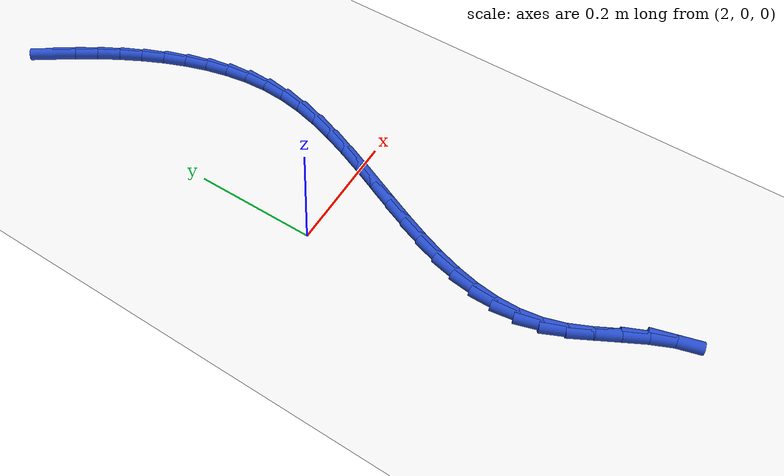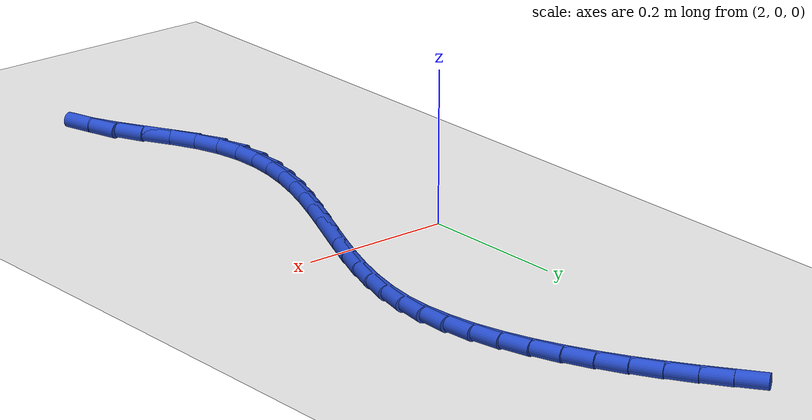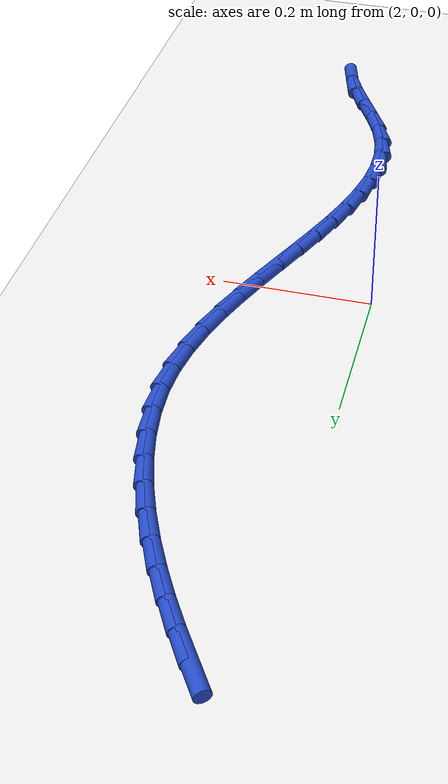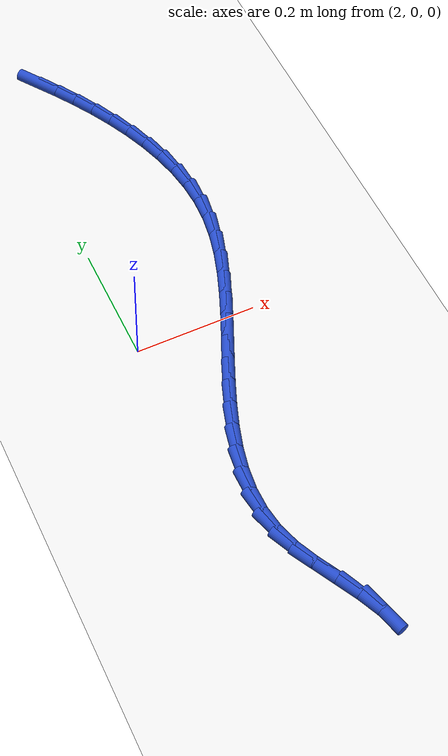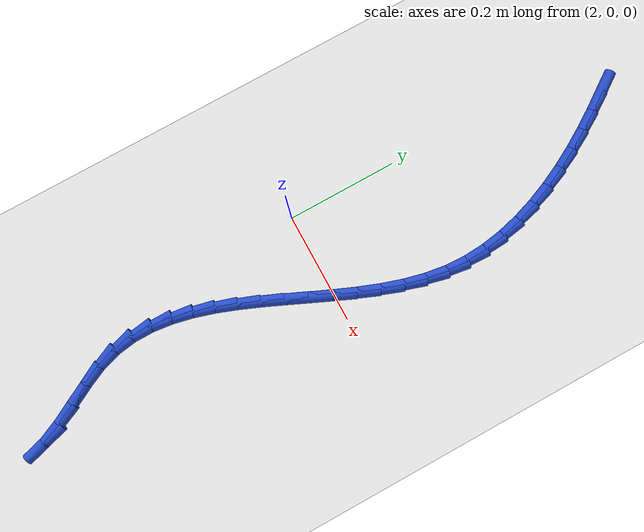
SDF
<sdf version="1.6">
 <world name="default">
  <model name="ground_plane">
   <static>1</static>
   <link name="link">
    <collision name="collision">
     <geometry><plane><normal>0 0 1</normal><size>100 100</size></plane></geometry>
     <surface><friction><ode><mu>100</mu><mu2>50</mu2></ode></friction></surface>
    </collision>
    <visual name="visual">
     <cast_shadows>0</cast_shadows>
     <geometry><plane><normal>0 0 1</normal><size>100 100</size></plane></geometry>
     <material>
      <script><uri>file://media/materials/scripts/gazebo.material</uri><name>Gazebo/WhiteGlow</name></script>
     </material>
    </visual>
   </link>
  </model>
  <model name="line">
   <link name="link_78">
    <pose>2.0672441882925137 0.5840078185000179 0.01 0 1.57 -0.9590440071209725</pose>
    <collision name="collision">
     <geometry><cylinder><radius>0.01</radius><length>0.08</length></cylinder></geometry>
    </collision>
    <visual name="visual">
     <material>
      <script><name>Gazebo/Blue</name><uri>file://media/materials/scripts/gazebo.material</uri></script>
     </material>
     <geometry><cylinder><radius>0.01</radius><length>0.08</length></cylinder></geometry>
    </visual>
   </link>
   <link name="link_79">
    <pose>2.08956151303703 0.5521954754884212 0.01 0 1.57 -0.9914472646458061</pose>
    <collision name="collision">
     <geometry><cylinder><radius>0.01</radius><length>0.08</length></cylinder></geometry>
    </collision>
    <visual name="visual">
     <material>
      <script><name>Gazebo/Blue</name><uri>file://media/materials/scripts/gazebo.material</uri></script>
     </material>
     <geometry><cylinder><radius>0.01</radius><length>0.08</length></cylinder></geometry>
    </visual>
   </link>
   <link name="link_80">
    <pose>2.1110107291794407 0.5194104646662899 0.01 0 1.57 -1.029882686592179</pose>
    <collision name="collision">
     <geometry><cylinder><radius>0.01</radius><length>0.08</length></cylinder></geometry>
    </collision>
    <visual name="visual">
     <material>
      <script><name>Gazebo/Blue</name><uri>file://media/materials/scripts/gazebo.material</uri></script>
     </material>
     <geometry><cylinder><radius>0.01</radius><length>0.08</length></cylinder></geometry>
    </visual>
   </link>
   <link name="link_81">
    <pose>2.131354802171431 0.48554162241392873 0.01 0 1.57 -1.0742848455316873</pose>
    <collision name="collision">
     <geometry><cylinder><radius>0.01</radius><length>0.08</length></cylinder></geometry>
    </collision>
    <visual name="visual">
     <material>
      <script><name>Gazebo/Blue</name><uri>file://media/materials/scripts/gazebo.material</uri></script>
     </material>
     <geometry><cylinder><radius>0.01</radius><length>0.08</length></cylinder></geometry>
    </visual>
   </link>
   <link name="link_82">
    <pose>2.1502411026345682 0.4506819921066975 0.01 0 1.57 -1.1253376866484457</pose>
    <collision name="collision">
     <geometry><cylinder><radius>0.01</radius><length>0.08</length></cylinder></geometry>
    </collision>
    <visual name="visual">
     <material>
      <script><name>Gazebo/Blue</name><uri>file://media/materials/scripts/gazebo.material</uri></script>
     </material>
     <geometry><cylinder><radius>0.01</radius><length>0.08</length></cylinder></geometry>
    </visual>
   </link>
   <link name="link_83">
    <pose>2.167298094435765 0.4149580173295469 0.01 0 1.57 -1.1838898248102667</pose>
    <collision name="collision">
     <geometry><cylinder><radius>0.01</radius><length>0.08</length></cylinder></geometry>
    </collision>
    <visual name="visual">
     <material>
      <script><name>Gazebo/Blue</name><uri>file://media/materials/scripts/gazebo.material</uri></script>
     </material>
     <geometry><cylinder><radius>0.01</radius><length>0.08</length></cylinder></geometry>
    </visual>
   </link>
   <link name="link_84">
    <pose>2.182154241441937 0.3784961416674266 0.01 0 1.57 -1.2508435677028216</pose>
    <collision name="collision">
     <geometry><cylinder><radius>0.01</radius><length>0.08</length></cylinder></geometry>
    </collision>
    <visual name="visual">
     <material>
      <script><name>Gazebo/Blue</name><uri>file://media/materials/scripts/gazebo.material</uri></script>
     </material>
     <geometry><cylinder><radius>0.01</radius><length>0.08</length></cylinder></geometry>
    </visual>
   </link>
   <link name="link_85">
    <pose>2.1944380075199965 0.3414228087052875 0.01 0 1.57 -1.3270644298050371</pose>
    <collision name="collision">
     <geometry><cylinder><radius>0.01</radius><length>0.08</length></cylinder></geometry>
    </collision>
    <visual name="visual">
     <material>
      <script><name>Gazebo/Blue</name><uri>file://media/materials/scripts/gazebo.material</uri></script>
     </material>
     <geometry><cylinder><radius>0.01</radius><length>0.08</length></cylinder></geometry>
    </visual>
   </link>
   <link name="link_86">
    <pose>2.2037778565368584 0.30386446202808015 0.01 0 1.57 -1.4132292836774563</pose>
    <collision name="collision">
     <geometry><cylinder><radius>0.01</radius><length>0.08</length></cylinder></geometry>
    </collision>
    <visual name="visual">
     <material>
      <script><name>Gazebo/Blue</name><uri>file://media/materials/scripts/gazebo.material</uri></script>
     </material>
     <geometry><cylinder><radius>0.01</radius><length>0.08</length></cylinder></geometry>
    </visual>
   </link>
   <link name="link_87">
    <pose>2.2098022523594367 0.26594754522075426 0.01 0 1.57 -1.5096024425093275</pose>
    <collision name="collision">
     <geometry><cylinder><radius>0.01</radius><length>0.08</length></cylinder></geometry>
    </collision>
    <visual name="visual">
     <material>
      <script><name>Gazebo/Blue</name><uri>file://media/materials/scripts/gazebo.material</uri></script>
     </material>
     <geometry><cylinder><radius>0.01</radius><length>0.08</length></cylinder></geometry>
    </visual>
   </link>
   <link name="link_88">
    <pose>2.212139658854645 0.22779850186826048 0.01 0 1.57 1.5258990293781916</pose>
    <collision name="collision">
     <geometry><cylinder><radius>0.01</radius><length>0.08</length></cylinder></geometry>
    </collision>
    <visual name="visual">
     <material>
      <script><name>Gazebo/Blue</name><uri>file://media/materials/scripts/gazebo.material</uri></script>
     </material>
     <geometry><cylinder><radius>0.01</radius><length>0.08</length></cylinder></geometry>
    </visual>
   </link>
   <link name="link_89">
    <pose>2.2104209596275686 0.1895435435945242 0.01 0 1.57 1.4197555149696566</pose>
    <collision name="collision">
     <geometry><cylinder><radius>0.01</radius><length>0.08</length></cylinder></geometry>
    </collision>
    <visual name="visual">
     <material>
      <script><name>Gazebo/Blue</name><uri>file://media/materials/scripts/gazebo.material</uri></script>
     </material>
     <geometry><cylinder><radius>0.01</radius><length>0.08</length></cylinder></geometry>
    </visual>
   </link>
   <link name="link_90">
    <pose>2.2045969772404965 0.15127821202398256 0.01 0 1.57 1.3311997230649972</pose>
    <collision name="collision">
     <geometry><cylinder><radius>0.01</radius><length>0.08</length></cylinder></geometry>
    </collision>
    <visual name="visual">
     <material>
      <script><name>Gazebo/Blue</name><uri>file://media/materials/scripts/gazebo.material</uri></script>
     </material>
     <geometry><cylinder><radius>0.01</radius><length>0.08</length></cylinder></geometry>
    </visual>
   </link>
   <link name="link_91">
    <pose>2.1952550696369353 0.1130370292041277 0.01 0 1.57 1.2616524955967945</pose>
    <collision name="collision">
     <geometry><cylinder><radius>0.01</radius><length>0.08</length></cylinder></geometry>
    </collision>
    <visual name="visual">
     <material>
      <script><name>Gazebo/Blue</name><uri>file://media/materials/scripts/gazebo.material</uri></script>
     </material>
     <geometry><cylinder><radius>0.01</radius><length>0.08</length></cylinder></geometry>
    </visual>
   </link>
   <link name="link_92">
    <pose>2.183057890687254 0.07484729916168316 0.01 0 1.57 1.2097689860366725</pose>
    <collision name="collision">
     <geometry><cylinder><radius>0.01</radius><length>0.08</length></cylinder></geometry>
    </collision>
    <visual name="visual">
     <material>
      <script><name>Gazebo/Blue</name><uri>file://media/materials/scripts/gazebo.material</uri></script>
     </material>
     <geometry><cylinder><radius>0.01</radius><length>0.08</length></cylinder></geometry>
    </visual>
   </link>
   <link name="link_93">
    <pose>2.168668094261816 0.036736325923372205 0.01 0 1.57 1.1741149009651564</pose>
    <collision name="collision">
     <geometry><cylinder><radius>0.01</radius><length>0.08</length></cylinder></geometry>
    </collision>
    <visual name="visual">
     <material>
      <script><name>Gazebo/Blue</name><uri>file://media/materials/scripts/gazebo.material</uri></script>
     </material>
     <geometry><cylinder><radius>0.01</radius><length>0.08</length></cylinder></geometry>
    </visual>
   </link>
   <link name="link_94">
    <pose>2.1527483342309903 -0.0012685864840829408 0.01 0 1.57 1.1535586880624649</pose>
    <collision name="collision">
     <geometry><cylinder><radius>0.01</radius><length>0.08</length></cylinder></geometry>
    </collision>
    <visual name="visual">
     <material>
      <script><name>Gazebo/Blue</name><uri>file://media/materials/scripts/gazebo.material</uri></script>
     </material>
     <geometry><cylinder><radius>0.01</radius><length>0.08</length></cylinder></geometry>
    </visual>
   </link>
   <link name="link_95">
    <pose>2.1359612644651413 -0.039140134033958926 0.01 0 1.57 1.1474611043986702</pose>
    <collision name="collision">
     <geometry><cylinder><radius>0.01</radius><length>0.08</length></cylinder></geometry>
    </collision>
    <visual name="visual">
     <material>
      <script><name>Gazebo/Blue</name><uri>file://media/materials/scripts/gazebo.material</uri></script>
     </material>
     <geometry><cylinder><radius>0.01</radius><length>0.08</length></cylinder></geometry>
    </visual>
   </link>
   <link name="link_96">
    <pose>2.118969538834637 -0.07685101269953276 0.01 0 1.57 1.1557615441621376</pose>
    <collision name="collision">
     <geometry><cylinder><radius>0.01</radius><length>0.08</length></cylinder></geometry>
    </collision>
    <visual name="visual">
     <material>
      <script><name>Gazebo/Blue</name><uri>file://media/materials/scripts/gazebo.material</uri></script>
     </material>
     <geometry><cylinder><radius>0.01</radius><length>0.08</length></cylinder></geometry>
    </visual>
   </link>
   <link name="link_97">
    <pose>2.102435811209842 -0.11437391845408149 0.01 0 1.57 1.179018469502335</pose>
    <collision name="collision">
     <geometry><cylinder><radius>0.01</radius><length>0.08</length></cylinder></geometry>
    </collision>
    <visual name="visual">
     <material>
      <script><name>Gazebo/Blue</name><uri>file://media/materials/scripts/gazebo.material</uri></script>
     </material>
     <geometry><cylinder><radius>0.01</radius><length>0.08</length></cylinder></geometry>
    </visual>
   </link>
   <link name="link_98">
    <pose>2.0870227354611246 -0.1516815472708813 0.01 0 1.57 1.218418342335773</pose>
    <collision name="collision">
     <geometry><cylinder><radius>0.01</radius><length>0.08</length></cylinder></geometry>
    </collision>
    <visual name="visual">
     <material>
      <script><name>Gazebo/Blue</name><uri>file://media/materials/scripts/gazebo.material</uri></script>
     </material>
     <geometry><cylinder><radius>0.01</radius><length>0.08</length></cylinder></geometry>
    </visual>
   </link>
   <link name="link_99">
    <pose>2.07339296545885 -0.18874659512321085 0.01 0 1.57 1.2757216048867401</pose>
    <collision name="collision">
     <geometry><cylinder><radius>0.01</radius><length>0.08</length></cylinder></geometry>
    </collision>
    <visual name="visual">
     <material>
      <script><name>Gazebo/Blue</name><uri>file://media/materials/scripts/gazebo.material</uri></script>
     </material>
     <geometry><cylinder><radius>0.01</radius><length>0.08</length></cylinder></geometry>
    </visual>
   </link>
   <link name="link_100">
    <pose>2.0622091550733854 -0.22554175798434636 0.01 0 1.57 1.3530535147793727</pose>
    <collision name="collision">
     <geometry><cylinder><radius>0.01</radius><length>0.08</length></cylinder></geometry>
    </collision>
    <visual name="visual">
     <material>
      <script><name>Gazebo/Blue</name><uri>file://media/materials/scripts/gazebo.material</uri></script>
     </material>
     <geometry><cylinder><radius>0.01</radius><length>0.08</length></cylinder></geometry>
    </visual>
   </link>
   <link name="link_101">
    <pose>2.0541339581750964 -0.26203973182756485 0.01 0 1.57 1.4523728025363662</pose>
    <collision name="collision">
     <geometry><cylinder><radius>0.01</radius><length>0.08</length></cylinder></geometry>
    </collision>
    <visual name="visual">
     <material>
      <script><name>Gazebo/Blue</name><uri>file://media/materials/scripts/gazebo.material</uri></script>
     </material>
     <geometry><cylinder><radius>0.01</radius><length>0.08</length></cylinder></geometry>
    </visual>
   </link>
   <link name="link_102">
    <pose>2.0498300286343496 -0.2982132126261433 0.01 0 1.57 -1.567167487973289</pose>
    <collision name="collision">
     <geometry><cylinder><radius>0.01</radius><length>0.08</length></cylinder></geometry>
    </collision>
    <visual name="visual">
     <material>
      <script><name>Gazebo/Blue</name><uri>file://media/materials/scripts/gazebo.material</uri></script>
     </material>
     <geometry><cylinder><radius>0.01</radius><length>0.08</length></cylinder></geometry>
    </visual>
   </link>
   <link name="link_103">
    <pose>2.049960020321512 -0.33403489635335887 0.01 0 1.57 -1.4243857867227545</pose>
    <collision name="collision">
     <geometry><cylinder><radius>0.01</radius><length>0.08</length></cylinder></geometry>
    </collision>
    <visual name="visual">
     <material>
      <script><name>Gazebo/Blue</name><uri>file://media/materials/scripts/gazebo.material</uri></script>
     </material>
     <geometry><cylinder><radius>0.01</radius><length>0.08</length></cylinder></geometry>
    </visual>
   </link>
   <link name="link_104">
    <pose>2.055186587106949 -0.3694774789824884 0.01 0 1.57 -1.267396346737297</pose>
    <collision name="collision">
     <geometry><cylinder><radius>0.01</radius><length>0.08</length></cylinder></geometry>
    </collision>
    <visual name="visual">
     <material>
      <script><name>Gazebo/Blue</name><uri>file://media/materials/scripts/gazebo.material</uri></script>
     </material>
     <geometry><cylinder><radius>0.01</radius><length>0.08</length></cylinder></geometry>
    </visual>
   </link>
   <link name="link_105">
    <pose>2.066155547434597 -0.40451474784488467 0.01 0 1.57 -1.1351395351754185</pose>
    <collision name="collision">
     <geometry><cylinder><radius>0.01</radius><length>0.08</length></cylinder></geometry>
    </collision>
    <visual name="visual">
     <material>
      <script><name>Gazebo/Blue</name><uri>file://media/materials/scripts/gazebo.material</uri></script>
     </material>
     <geometry><cylinder><radius>0.01</radius><length>0.08</length></cylinder></geometry>
    </visual>
   </link>
   <link name="link_106">
    <pose>2.082300595073131 -0.4391990663661438 0.01 0 1.57 -1.073148735877293</pose>
    <collision name="collision">
     <geometry><cylinder><radius>0.01</radius><length>0.08</length></cylinder></geometry>
    </collision>
    <visual name="visual">
     <material>
      <script><name>Gazebo/Blue</name><uri>file://media/materials/scripts/gazebo.material</uri></script>
     </material>
     <geometry><cylinder><radius>0.01</radius><length>0.08</length></cylinder></geometry>
    </visual>
   </link>
   <link name="link_107">
    <pose>2.10105023884851 -0.473712784271328 0.01 0 1.57 -1.076913587153937</pose>
    <collision name="collision">
     <geometry><cylinder><radius>0.01</radius><length>0.08</length></cylinder></geometry>
    </collision>
    <visual name="visual">
     <material>
      <script><name>Gazebo/Blue</name><uri>file://media/materials/scripts/gazebo.material</uri></script>
     </material>
     <geometry><cylinder><radius>0.01</radius><length>0.08</length></cylinder></geometry>
    </visual>
   </link>
   <link name="link_108">
    <pose>2.1196448307588613 -0.5082504485692757 0.01 0 1.57 -1.1469948027619543</pose>
    <collision name="collision">
     <geometry><cylinder><radius>0.01</radius><length>0.08</length></cylinder></geometry>
    </collision>
    <visual name="visual">
     <material>
      <script><name>Gazebo/Blue</name><uri>file://media/materials/scripts/gazebo.material</uri></script>
     </material>
     <geometry><cylinder><radius>0.01</radius><length>0.08</length></cylinder></geometry>
    </visual>
   </link>
   <link name="link_109">
    <pose>2.135324722802314 -0.5430066062688255 0.01 0 1.57 -1.2924719879193531</pose>
    <collision name="collision">
     <geometry><cylinder><radius>0.01</radius><length>0.08</length></cylinder></geometry>
    </collision>
    <visual name="visual">
     <material>
      <script><name>Gazebo/Blue</name><uri>file://media/materials/scripts/gazebo.material</uri></script>
     </material>
     <geometry><cylinder><radius>0.01</radius><length>0.08</length></cylinder></geometry>
    </visual>
   </link>
  </model>
 </world>
</sdf>
